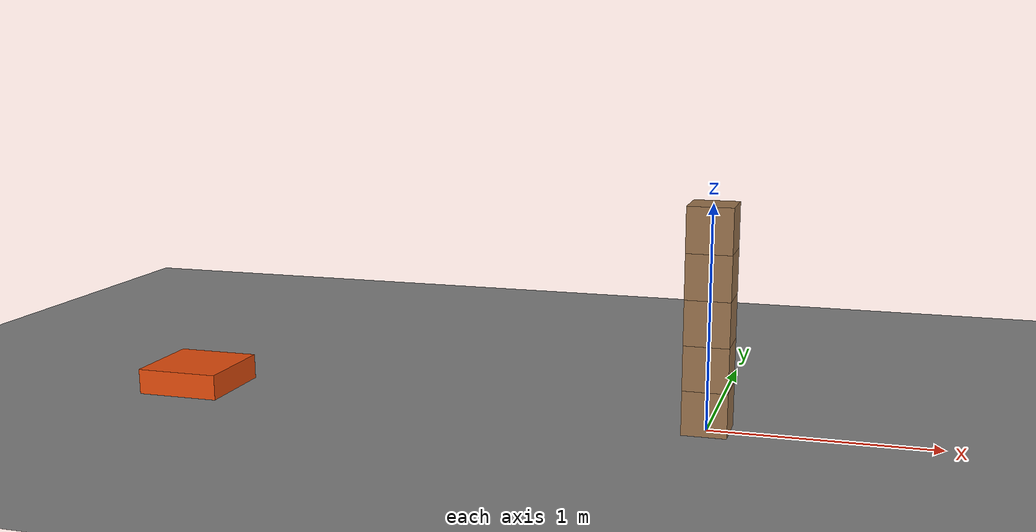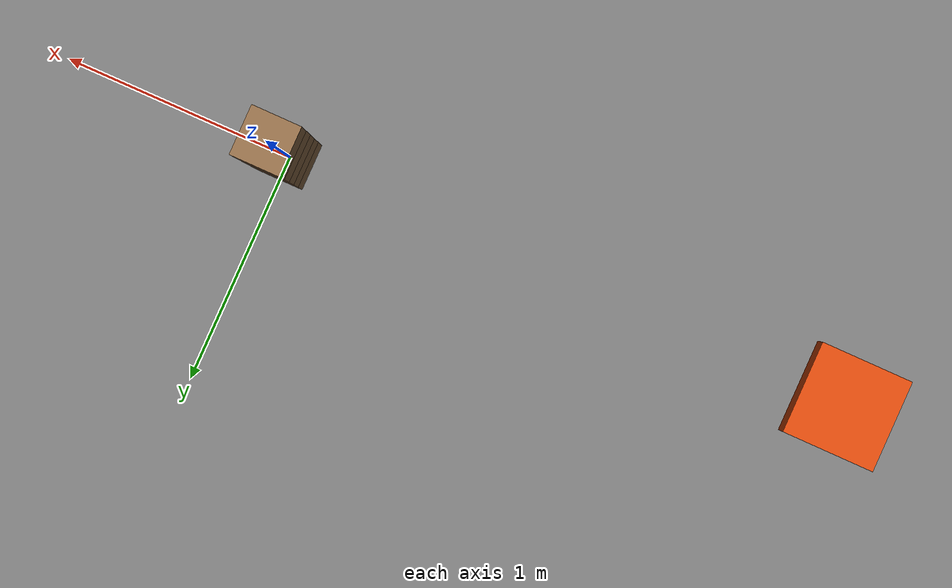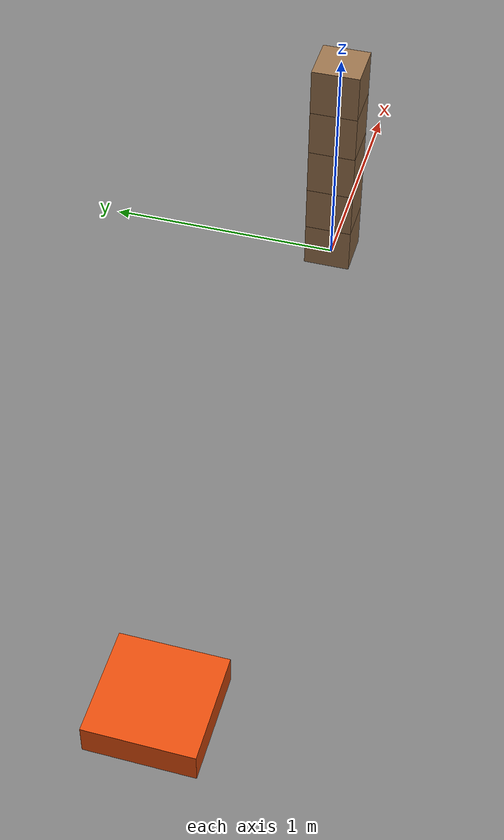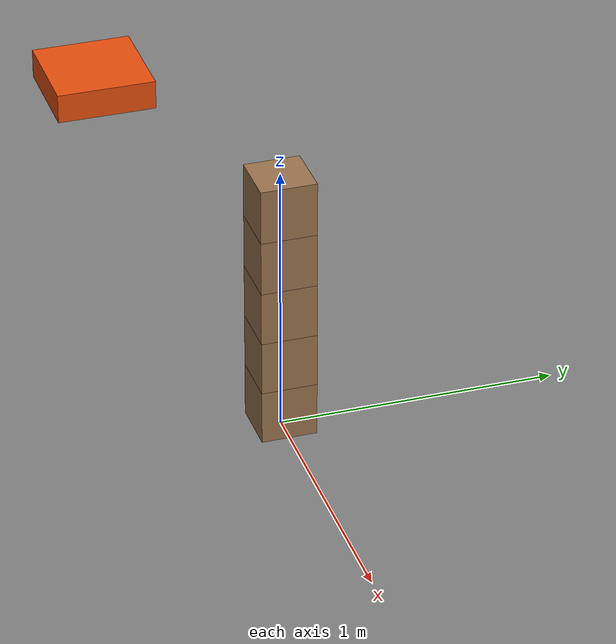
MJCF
<mujoco model="five_blocks_topple_after_a_push">
  <compiler angle="radian"/>
  <option timestep="0.002"/>
  <worldbody>
    <geom name="floor" type="plane" size="6 6 0.1" friction="0.6 0.005 0.002"/>
    <body name="block1" pos="0 0 0.1">
      <freejoint/>
      <geom name="block1" type="box" pos="0 0 0" size="0.1 0.1 0.1" mass="1" friction="0.6 0.005 0.002" solref="0.01 1" rgba="0.6 0.45 0.3 1"/>
    </body>
    <body name="block2" pos="0 0 0.3">
      <freejoint/>
      <geom name="block2" type="box" pos="0 0 0" size="0.1 0.1 0.1" mass="1" friction="0.6 0.005 0.002" solref="0.01 1" rgba="0.6 0.45 0.3 1"/>
    </body>
    <body name="block3" pos="0 0 0.5">
      <freejoint/>
      <geom name="block3" type="box" pos="0 0 0" size="0.1 0.1 0.1" mass="1" friction="0.6 0.005 0.002" solref="0.01 1" rgba="0.6 0.45 0.3 1"/>
    </body>
    <body name="block4" pos="0 0 0.7">
      <freejoint/>
      <geom name="block4" type="box" pos="0 0 0" size="0.1 0.1 0.1" mass="1" friction="0.6 0.005 0.002" solref="0.01 1" rgba="0.6 0.45 0.3 1"/>
    </body>
    <body name="block5" pos="0 0 0.9">
      <freejoint/>
      <geom name="block5" type="box" pos="0 0 0" size="0.1 0.1 0.1" mass="1" friction="0.6 0.005 0.002" solref="0.01 1" rgba="0.6 0.45 0.3 1"/>
    </body>
    <body name="pusher" pos="-2.5 0 0.06">
      <freejoint/>
      <geom name="pusher" type="box" pos="0 0 0" size="0.2 0.2 0.06" mass="10" friction="0.6 0.005 0.002" solref="0.01 1" rgba="0.9 0.3 0.05 1"/>
    </body>
  </worldbody>
  <keyframe>
    <key name="start" qpos="0 0 0.1 1 0 0 0 0 0 0.3 1 0 0 0 0 0 0.5 1 0 0 0 0 0 0.7 1 0 0 0 0 0 0.9 1 0 0 0 -2.5 0 0.06 1 0 0 0" qvel="0 0 0 0 0 0 0 0 0 0 0 0 0 0 0 0 0 0 0 0 0 0 0 0 0 0 0 0 0 0 6 0 0 0 0 0"/>
  </keyframe>
</mujoco>
